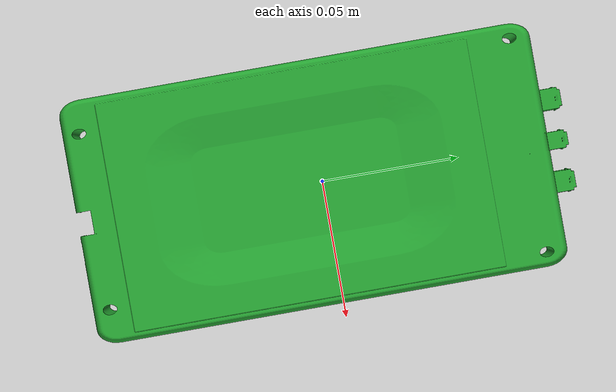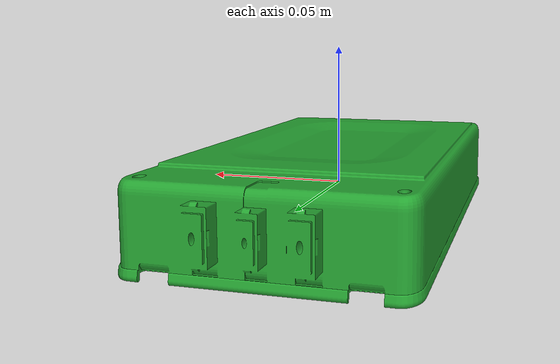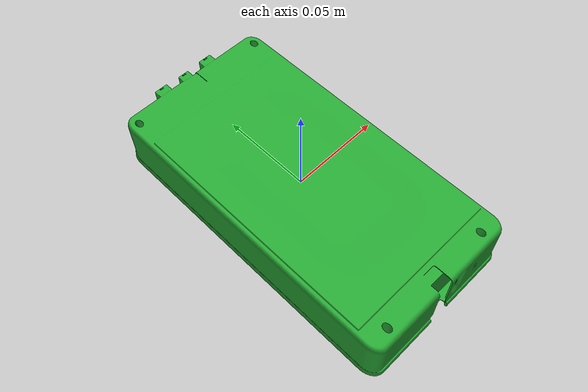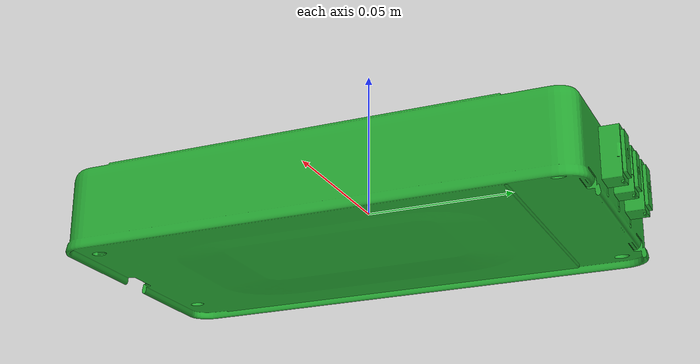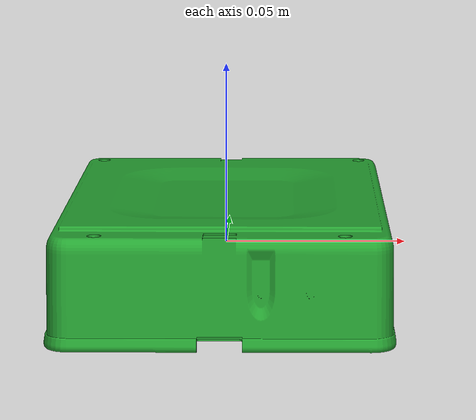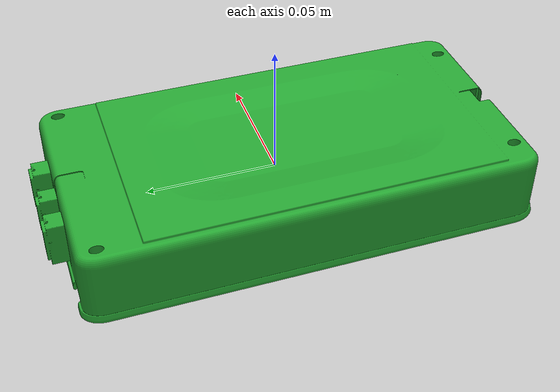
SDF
<?xml version="1.0" ?>

<sdf version="1.5">
  <model name="object_a">
    <static>false</static>
    <link name="leaf_cell_link">
      <collision name="collision">
        <geometry>
      	  <box>
            <size> 0.09 0.18 0.03</size>
          </box>
        </geometry>
		<surface>
			<friction>
				<ode>
					<mu>0.98</mu>
					<mu2>0.98</mu2>
				</ode>
			</friction>
		</surface>
      </collision>
      <visual name="visual">
        <geometry>
          <mesh>
            <uri>model://object_a/meshes/object_a.dae</uri>
          </mesh>
        </geometry>
        <material>
		    <script>
		        <uri>file://media/materials/scripts/gazebo.material</uri>
		        <name>Gazebo/Green</name>
		    </script>
        </material>
      </visual>
	  <inertial>
		<pose>0.0 0.0 0.0 0.0 0.0 -1.5707</pose>
        <mass>0.5</mass>
		<inertia>
			<ixx>0.000141667</ixx>
			<iyy>0.000141667</iyy>
			<izz>0.000208333</izz>
			<ixy>0.0</ixy>
			<ixz>0.0</ixz>
			<iyz>0.0</iyz>
		</inertia>
	  </inertial>
	</link>

  </model>
</sdf>
